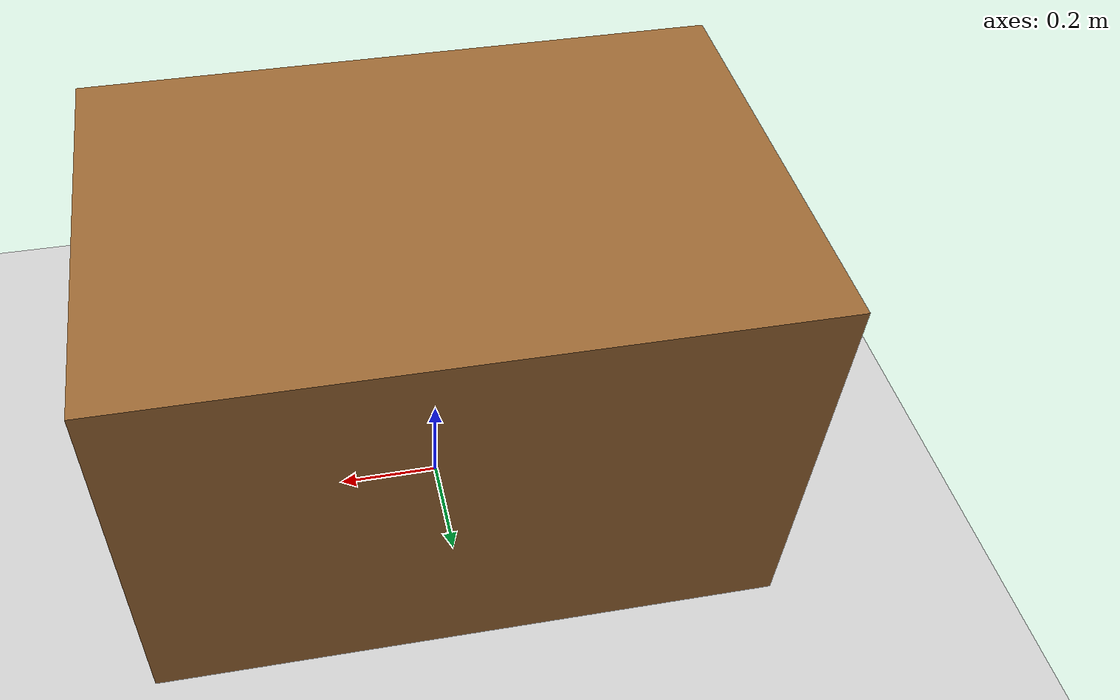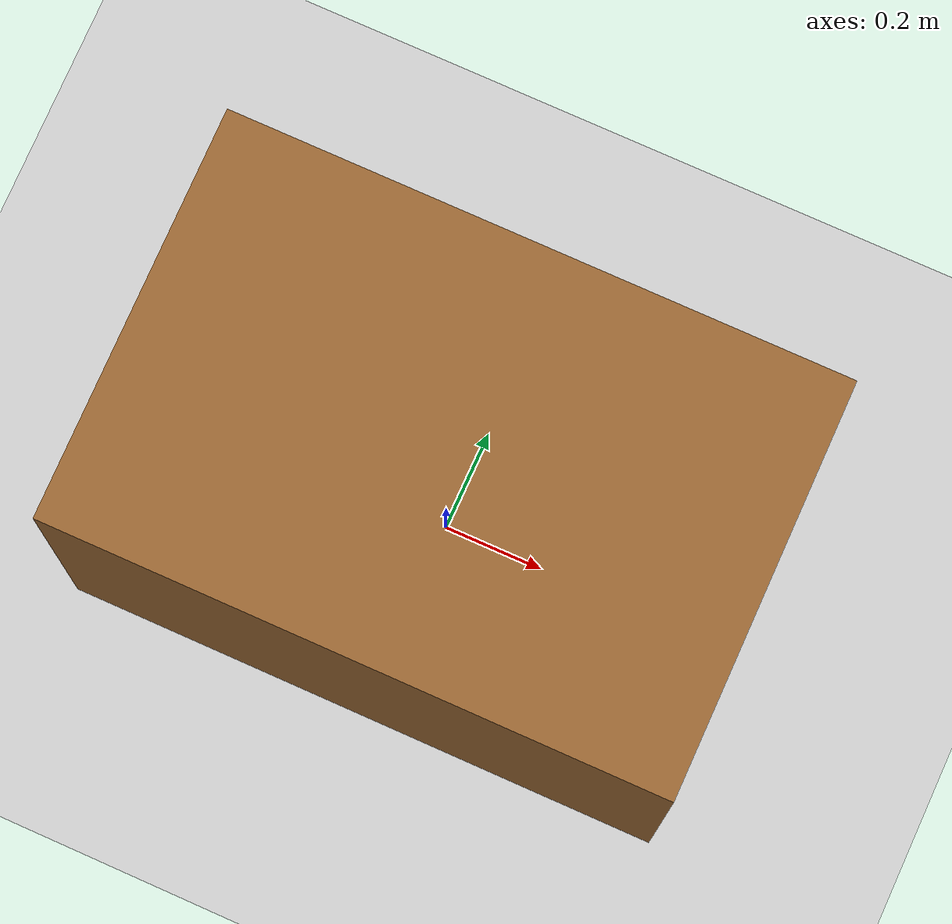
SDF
<?xml version="1.0"?>
<sdf version="1.9">
  <world name="grasp_world">

    <physics name="1ms" type="ignored">
      <max_step_size>0.002</max_step_size>
      <real_time_factor>1.0</real_time_factor>
    </physics>

    <plugin filename="gz-sim-physics-system"
            name="gz::sim::systems::Physics"/>
    <plugin filename="gz-sim-user-commands-system"
            name="gz::sim::systems::UserCommands"/>
    <plugin filename="gz-sim-scene-broadcaster-system"
            name="gz::sim::systems::SceneBroadcaster"/>
    <plugin filename="gz-sim-sensors-system"
            name="gz::sim::systems::Sensors">
      <render_engine>ogre2</render_engine>
    </plugin>

    <light type="directional" name="sun">
      <cast_shadows>true</cast_shadows>
      <pose>0 0 10 0 0 0</pose>
      <diffuse>0.8 0.8 0.8 1</diffuse>
      <specular>0.2 0.2 0.2 1</specular>
      <direction>-0.5 0.1 -0.9</direction>
    </light>

    <model name="ground_plane">
      <static>true</static>
      <link name="link">
        <collision name="collision">
          <geometry><plane><normal>0 0 1</normal></plane></geometry>
        </collision>
        <visual name="visual">
          <geometry><plane><normal>0 0 1</normal><size>100 100</size></plane></geometry>
          <material>
            <ambient>0.8 0.8 0.8 1</ambient>
            <diffuse>0.8 0.8 0.8 1</diffuse>
          </material>
        </visual>
      </link>
    </model>

    <!-- Table the robot sits on. Top surface at z=0.77m matches the robot
         base origin in the URDF. -->
    <model name="table">
      <static>true</static>
      <pose>0 0 0.385 0 0 0</pose>
      <link name="link">
        <collision name="collision">
          <geometry><box><size>1.2 0.8 0.77</size></box></geometry>
        </collision>
        <visual name="visual">
          <geometry><box><size>1.2 0.8 0.77</size></box></geometry>
          <material>
            <ambient>0.6 0.4 0.2 1</ambient>
            <diffuse>0.6 0.4 0.2 1</diffuse>
          </material>
        </visual>
      </link>
    </model>

  </world>
</sdf>
